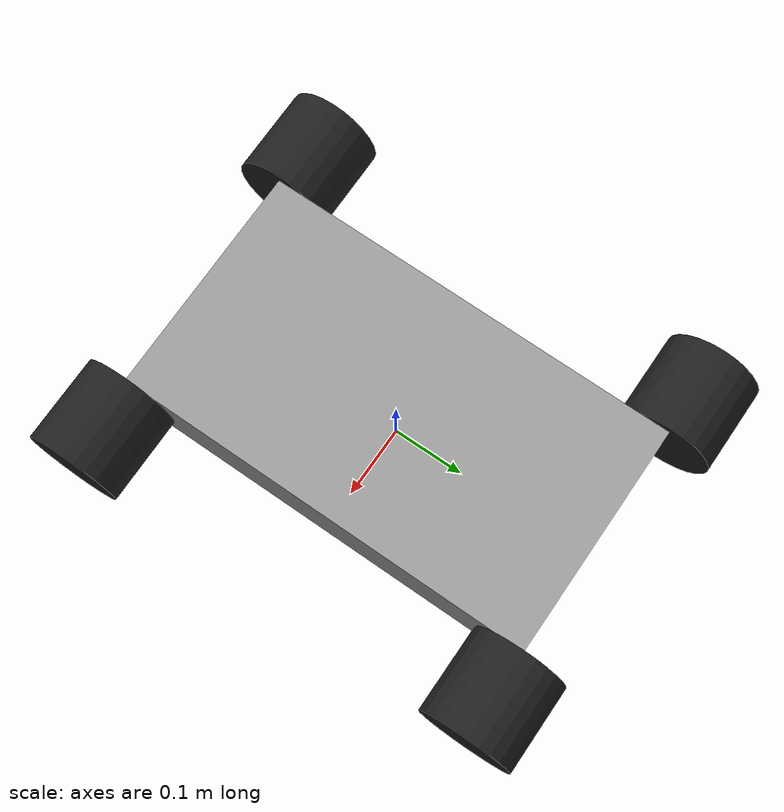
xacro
<?xml version="1.0" ?>
<!--       simulation model of crawler robot in UGVC 2016         -->
<robot name="ugvc_crawler_robot" xmlns:xacro="http://www.ros.org/wiki/xacro">

	<xacro:include filename="$(find rrbot_description)/urdf/ugvc_crawler_robot.gazebo" />

	<xacro:property name="PI" value="3.1415926535897931"/>

  	<xacro:property name="chassis_mass" value="20" /> <!-- arbitrary value for mass -->
  	<xacro:property name="wheel_mass" value="3" />
  	<xacro:property name="flipper_mass" value="3" />

  	<xacro:property name="chassis_width" value="0.32" /> <!-- Square dimensions (widthxwidth) of beams -->
  	<xacro:property name="chassis_length" value="0.58" />
  	<xacro:property name="chassis_thickness" value="0.1" />
  	<xacro:property name="flipper_length" value="0.37" />
  	<xacro:property name="flipper_width" value="0.1" />
  	<xacro:property name="flipper_thickness" value="0.04" />

  	<xacro:property name="wheel_radius" value="0.065" />
  	<xacro:property name="main_wheel_length" value="0.12" />
  	<xacro:property name="flipper_wheel_length" value="0.06" />

  <link name="chassis">
    <inertial>
      <mass value="${chassis_mass}"/>
      <origin rpy="0  0  0" xyz="0 0 ${wheel_radius}"/>
      <inertia ixx="10" ixy="0" ixz="0" iyy="10" iyz="0" izz="10"/>
    </inertial>
    <collision name="collision">
      <origin rpy="0  0  0" xyz="0 0 ${wheel_radius}"/>
      <geometry>
        <box size="${chassis_width} ${chassis_length} ${chassis_thickness}"/>
      </geometry>
    </collision>
    <visual name="visual">
      <origin rpy="0  0  0" xyz="0 0 ${wheel_radius}"/>
      <geometry>
        <box size="${chassis_width} ${chassis_length} ${chassis_thickness}"/>
      </geometry>
    </visual>
  </link>

  <joint name="right_main_front_wheel" type="continuous">
    <parent link="chassis"/>
    <child link="right_main_front_wheel"/>
    <origin rpy="0 0 0" xyz="${chassis_width/2+main_wheel_length/2} ${chassis_length/2} ${wheel_radius}"/>
    <axis xyz="-1 0 0"/>
    <limit effort="0" lower="0" upper="0" velocity="0"/>
  </joint>

   <link name="right_main_front_wheel">
    <inertial>
      <mass value="${wheel_mass}"/>
      <origin rpy="0 ${-PI/2} 0" xyz="0 0 0"/>
      <inertia ixx="1.0" ixy="0" ixz="0" iyy="1.0" iyz="0" izz="1.0"/>
    </inertial>
    <collision name="collision">
      <origin rpy="0 ${-PI/2} 0" xyz="0 0 0"/>
      <geometry>
        <cylinder length="${main_wheel_length}" radius="${wheel_radius}"/>
      </geometry>
    </collision>
    <visual name="visual">
      <origin rpy="0 ${-PI/2} 0" xyz="0 0 0"/>
      <geometry>
        <cylinder length="${main_wheel_length}" radius="${wheel_radius}"/>
      </geometry>
    </visual>
  </link>

  <joint name="left_main_front_wheel" type="continuous">
    <parent link="chassis"/>
    <child link="left_main_front_wheel"/>
    <origin rpy="0 0 0" xyz="${-chassis_width/2-main_wheel_length/2} ${chassis_length/2} ${wheel_radius}"/>
    <axis xyz="-1 0 0"/>
    <limit effort="0" lower="0" upper="0" velocity="0"/>
  </joint>

   <link name="left_main_front_wheel">
    <inertial>
      <mass value="${wheel_mass}"/>
      <origin rpy="0 ${PI/2} 0" xyz="0 0 0"/>
      <inertia ixx="1.0" ixy="0" ixz="0" iyy="1.0" iyz="0" izz="1.0"/>
    </inertial>
    <collision name="collision">
      <origin rpy="0 ${PI/2} 0" xyz="0 0 0"/>
      <geometry>
        <cylinder length="${main_wheel_length}" radius="${wheel_radius}"/>
      </geometry>
    </collision>
    <visual name="visual">
      <origin rpy="0 ${PI/2} 0" xyz="0 0 0"/>
      <geometry>
        <cylinder length="${main_wheel_length}" radius="${wheel_radius}"/>
      </geometry>
    </visual>
  </link>

  <joint name="right_main_rear_wheel" type="continuous">
    <parent link="chassis"/>
    <child link="right_main_rear_wheel"/>
    <origin rpy="0 0 0" xyz="${chassis_width/2+main_wheel_length/2} ${-chassis_length/2} ${wheel_radius}"/>
    <axis xyz="-1 0 0"/>
    <limit effort="0" lower="0" upper="0" velocity="0"/>
  </joint>

   <link name="right_main_rear_wheel">
    <inertial>
      <mass value="${wheel_mass}"/>
      <origin rpy="0 ${-PI/2} 0" xyz="0 0 0"/>
      <inertia ixx="1.0" ixy="0" ixz="0" iyy="1.0" iyz="0" izz="1.0"/>
    </inertial>
    <collision name="collision">
      <origin rpy="0 ${-PI/2} 0" xyz="0 0 0"/>
      <geometry>
        <cylinder length="${main_wheel_length}" radius="${wheel_radius}"/>
      </geometry>
    </collision>
    <visual name="visual">
      <origin rpy="0 ${-PI/2} 0" xyz="0 0 0"/>
      <geometry>
        <cylinder length="${main_wheel_length}" radius="${wheel_radius}"/>
      </geometry>
    </visual>
  </link>

  <joint name="left_main_rear_wheel" type="continuous">
    <parent link="chassis"/>
    <child link="left_main_rear_wheel"/>
    <origin rpy="0 0 0" xyz="${-chassis_width/2-main_wheel_length/2} ${-chassis_length/2} ${wheel_radius}"/>
    <axis xyz="-1 0 0"/>
    <limit effort="0" lower="0" upper="0" velocity="0"/>
  </joint>

   <link name="left_main_rear_wheel">
    <inertial>
      <mass value="${wheel_mass}"/>
      <origin rpy="0 ${PI/2} 0" xyz="0 0 0"/>
      <inertia ixx="1.0" ixy="0" ixz="0" iyy="1.0" iyz="0" izz="1.0"/>
    </inertial>
    <collision name="collision">
      <origin rpy="0 ${PI/2} 0" xyz="0 0 0"/>
      <geometry>
        <cylinder length="${main_wheel_length}" radius="${wheel_radius}"/>
      </geometry>
    </collision>
    <visual name="visual">
      <origin rpy="0 ${PI/2} 0" xyz="0 0 0"/>
      <geometry>
        <cylinder length="${main_wheel_length}" radius="${wheel_radius}"/>
      </geometry>
    </visual>
  </link>

</robot>
